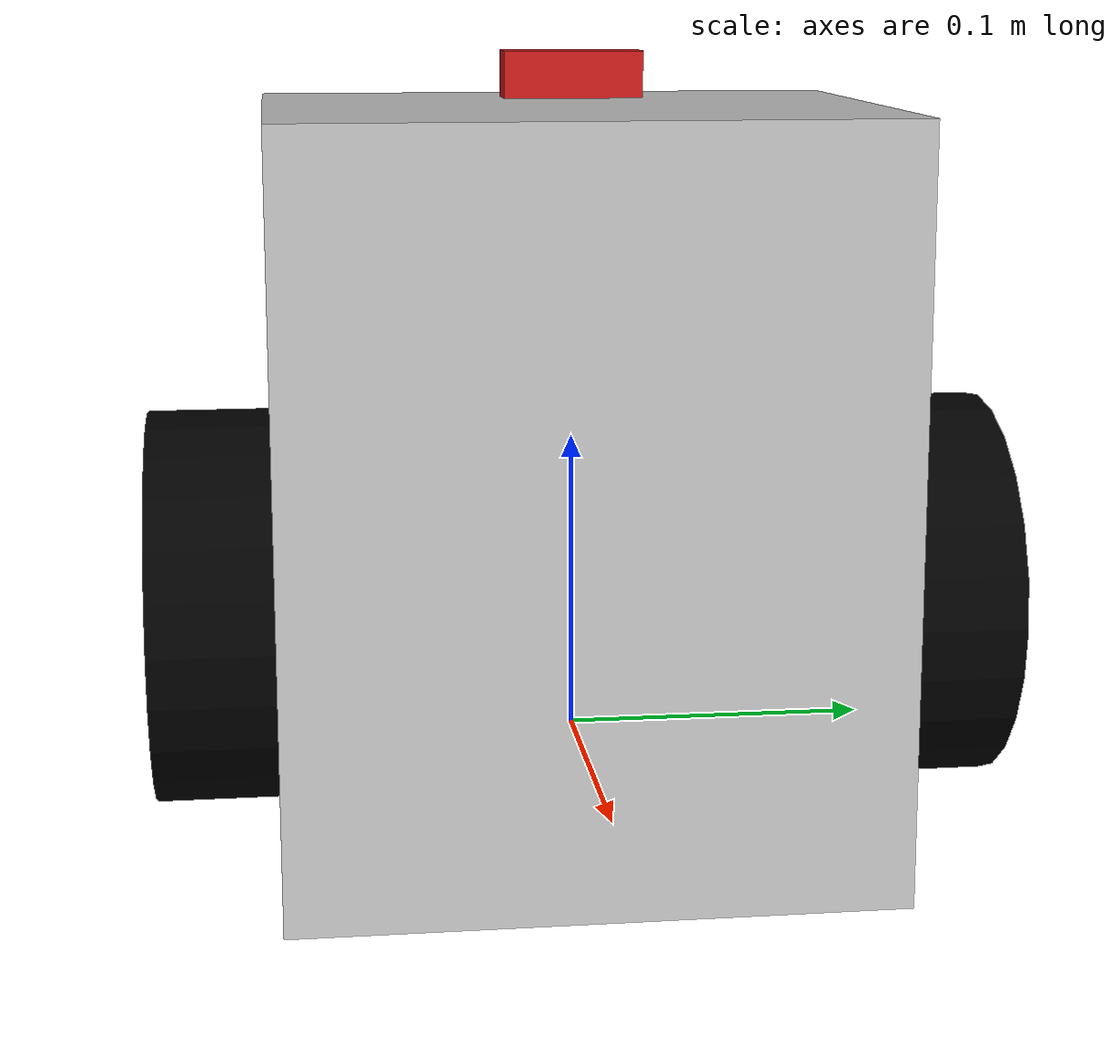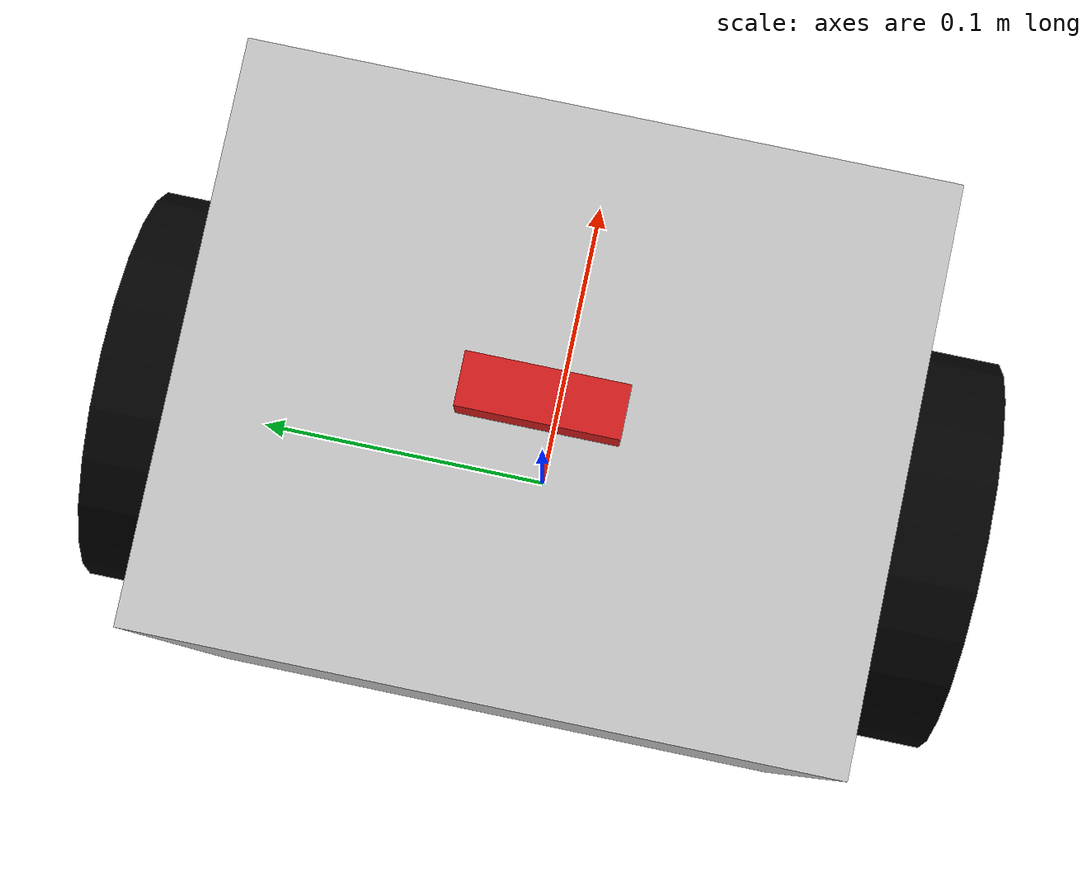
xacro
<?xml version="1.0"?>
<robot name="synus_robot" xmlns:xacro="http://ros.org/wiki/xacro">

  <!-- Robot Motor Parameters -->
  <xacro:property name="PI" value="3.1415926535897931" />
  <!-- Degree to Radian Conversions -->
  <xacro:property name="degrees_45" value="0.785398163" />
  <xacro:property name="degrees_90" value="1.57079633" />
  <xacro:property name="degrees_180" value="3.14159266" />
  <xacro:property name="degrees_270" value="4.71239" />
  <xacro:property name="baselink_offset_z" value="1.200" />

  <xacro:property name="body_length_x" value="0.1650" />  <!-- width 235, length 165 -->
  <xacro:property name="body_width_y" value="0.2" />
  <xacro:property name="body_height_z" value="0.25" />
  <xacro:property name="body_collision_x" value="2.20" />
  <xacro:property name="body_collision_y" value="1.50" />
  <xacro:property name="body_collision_z" value="2.2" />

  <xacro:property name="lwheel_length" value="0.05" />
  <xacro:property name="lwheel_radius" value="0.065" />  <!-- wheel diameter 130 pi -->
  <xacro:property name="lwheel_offset_x" value="0.235" />
  <xacro:property name="lwheel_offset_y" value="0.0" />
  <xacro:property name="lwheel_offset_z" value="0.110" />
  <xacro:property name="lwheel_joint_damping" value="1.0" />
  <xacro:property name="lwheel_joint_friction" value="1.0" />
  <xacro:property name="lwheel_joint_effort_limit" value="1000.0" />
  <xacro:property name="lwheel_joint_velocity_limit" value="2000.0" />
  <xacro:property name="lwheel_mechanical_reduction" value="1.0" />

  <xacro:property name="rwheel_length" value="0.05" />
  <xacro:property name="rwheel_radius" value="0.065" />  <!-- wheel diameter 130 pi -->
  <xacro:property name="rwheel_offset_x" value="0.235" />
  <xacro:property name="rwheel_offset_y" value="0.0" />
  <xacro:property name="rwheel_offset_z" value="0.110" />
  <xacro:property name="rwheel_joint_damping" value="1.0" />
  <xacro:property name="rwheel_joint_friction" value="1.0" />
  <xacro:property name="rwheel_joint_effort_limit" value="1000.0" />
  <xacro:property name="rwheel_joint_velocity_limit" value="2000.0" />
  <xacro:property name="rwheel_mechanical_reduction" value="1.0" />

  <xacro:property name="steer_joint_damping" value="2.0" />
  <xacro:property name="steer_joint_friction" value="1.0" />
  <xacro:property name="steer_joint_effort_limit" value="100.0" />
  <xacro:property name="steer_joint_velocity_limit" value="100.0" />

  <xacro:property name="scanner_pos_x" value="0.0" />
  <xacro:property name="scanner_pos_y" value="0.0" />
  <xacro:property name="scanner_pos_z" value="0.2" />

  <material name="blue">
    <color rgba="0 0 0.8 1"/>
  </material>

  <material name="black">
    <color rgba="0 0 0 1"/>
  </material>

  <material name="white">
    <color rgba="1 1 1 1"/>
  </material>

  <!-- BASE_FOOTPRINT -->
  <link name="base_footprint">
    <visual>
      <origin xyz="0 0 0" rpy="0 0 0.0"/>
      <geometry>
        <box size="0.001 0.001 0.001"/>
      </geometry>
      <material name="white">
        <color rgba="1 1 1 1"/>
      </material>
    </visual>
  </link>

  <joint name="base_footprint_joint" type="fixed">
    <origin xyz="0 0 0" rpy="0 0 0"/>
    <parent link="base_footprint"/>
    <child link="base_link"/>
  </joint>

  <!-- BASE_LINK (RED) -->
  <link name="base_link">
    <visual>
      <origin xyz="0 0 0.085" rpy="0 0 0"/>
      <!--origin xyz="0 0 ${baselink_offset_z}" rpy="${degrees_90} 0 0" /-->
      <geometry>
        <!--mesh filename="package://synus_robot_description/meshes/ss_body.stl" scale="0.001 0.001 0.001" /-->
        <box size="${body_length_x} ${body_width_y} ${body_height_z}"/>
      </geometry>
      <material name="silver">
        <color rgba="0.75 0.75 0.75 1"/>
      </material>
    </visual>
  </link>

  <!-- LEFT WHEEL -->
  <link name="lwheel">
    <visual>
      <geometry>
        <cylinder length="${lwheel_length}" radius="${lwheel_radius}"/>
      </geometry>
      <origin xyz="0 0 0" rpy="0 ${degrees_90} 0"/>
      <material name="black">
        <color rgba="0 0 0 1"/>
      </material>
    </visual>
  </link>

  <joint name="base_to_lwheel" type="continuous">
    <parent link="base_link"/>
    <child link="lwheel"/>
    <origin xyz="0 0.115 0.046" rpy="0 0 ${degrees_90}"/>
  </joint>

  <!-- RIGHT WHEEL -->
  <link name="rwheel">
    <visual>
      <geometry>
        <cylinder length="${rwheel_length}" radius="${rwheel_radius}"/>
      </geometry>
      <origin xyz="0 0 0" rpy="0 ${degrees_90} 0"/>
      <material name="black">
        <color rgba="0 0 0 1"/>
      </material>
    </visual>
  </link>

  <joint name="base_to_rwheel" type="continuous">
    <parent link="base_link"/>
    <child link="rwheel"/>
    <origin xyz="0 -0.115 0.046" rpy="0 0 -${degrees_90}"/>
    <!--origin xyz="-${wheel_offset_x} ${wheel_offset_y} ${wheel_offset_z}" rpy="0 0 0" /-->
    <!--limit effort="${steer_joint_effort_limit}" velocity="${steer_joint_velocity_limit}" lower="-${degrees_45}" upper="${degrees_45}"/-->
    <!--joint_properties damping="${steer_joint_damping}" friction="${steer_joint_friction}"/-->
  </joint>

  <link name="scanner">
    <visual>
      <geometry>
        <box size="0.015 0.045 0.015"/>
      </geometry>
      <origin xyz="0 0 0" rpy="0 0 0"/>
      <material name="red">
        <color rgba="0.8 0.1 0.1 1"/>
      </material>
    </visual>
  </link>

  <joint name="base_to_scanner" type="fixed">
    <parent link="base_link"/>
    <child link="scanner"/>
    <origin xyz="0 0 0.22" rpy="0 0 0"/>
  </joint>

  <link name="imu">
    <visual>
      <geometry>
        <box size="0.05 0.05 0.05"/>
      </geometry>
      <origin xyz="0 0 0" rpy="0 0 0"/>
      <material name="red">
        <color rgba="0.8 0.1 0.1 1"/>
      </material>
    </visual>
  </link>

  <joint name="base_to_imu" type="fixed">
    <parent link="base_link"/>
    <child link="imu"/>
    <origin xyz="0 0 0.046" rpy="0 0 0"/>
  </joint>

</robot>
